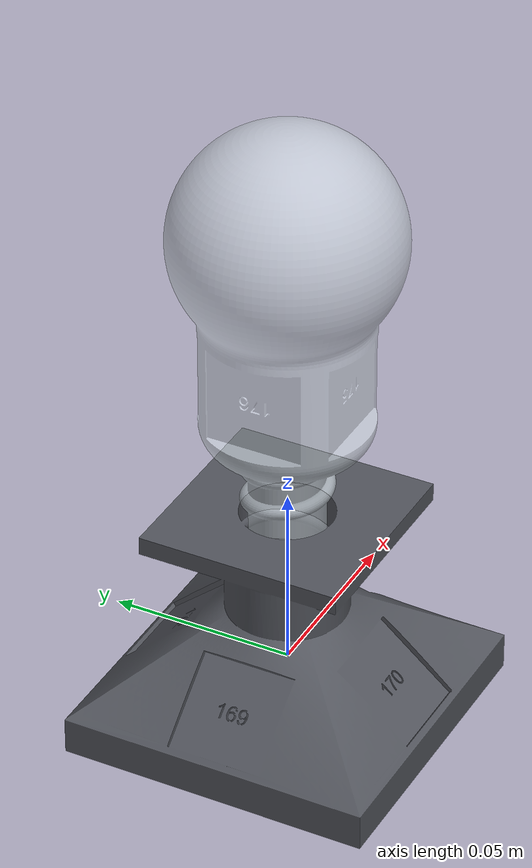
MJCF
<mujoco model="lamp_assembly">
  <asset>
    <!-- STLs are in mm. RoboCasa multiplies this scale by the ObjCat scale (1.0 here). -->
    <mesh file="visual/lamp_base.stl" name="lamp_base_vis" scale="0.001 0.001 0.001"/>
    <mesh file="visual/lamp_bulb.stl" name="lamp_bulb_vis" scale="0.001 0.001 0.001"/>
    <material name="base_mat" rgba="0.32 0.33 0.36 1" specular="0.6" shininess="0.55"/>
    <material name="bulb_mat" rgba="0.86 0.90 0.93 0.62" specular="0.9" shininess="0.9"/>
  </asset>

  <worldbody>
    <body>
      <!-- ===== lamp base: free joint gets added here by MJCFObject ===== -->
      <body name="object">
        <!-- explicit inertial: RoboCasa overwrites per-geom density, and we want the base
             heavy enough that screwing torque does not spin it on the counter -->
        <inertial pos="0 0 -0.005" mass="0.60" diaginertia="0.0006 0.0006 0.0008"/>

        <!-- mesh spans z -35..+28 mm about its own origin; shift so the foot sits at
             -0.0172 and the socket neck tip at +0.0458, matching the collision geoms -->
        <geom name="base_vis" type="mesh" mesh="lamp_base_vis" material="base_mat"
              pos="0 0 0.0178" group="1" contype="0" conaffinity="0"/>

        <geom name="base_foot_coll" type="box" size="0.0424 0.0424 0.005" pos="0 0 -0.0122" group="0" rgba="0.8 0.8 0.8 0"/>
        <geom name="base_pyramid_coll" type="box" size="0.036 0.036 0.006" pos="0 0 -0.0012" group="0" rgba="0.8 0.8 0.8 0"/>
        <geom name="base_cone_coll" type="cylinder" size="0.024 0.00525" pos="0 0 0.01005" group="0" rgba="0.8 0.8 0.8 0"/>
        <geom name="base_socket_coll" type="cylinder" size="0.018 0.012" pos="0 0 0.027" group="0" rgba="0.8 0.8 0.8 0"/>
        <geom name="base_rim_coll" type="box" size="0.0276 0.0276 0.0025" pos="0 0 0.0433" group="0" rgba="0.8 0.8 0.8 0"/>

        <!-- ===== light bulb: seated pose is z=0.0678, so it starts 0.02 m proud ===== -->
        <body name="bulb" pos="0 0 0.0878">
          <joint name="screw_hinge" type="hinge" axis="0 0 1" limited="true" range="-6.2831853 0"
                 damping="0.02" frictionloss="0.10" armature="0.005"/>
          <joint name="screw_slide" type="slide" axis="0 0 1" limited="true" range="-0.02 0"
                 damping="0.05" frictionloss="1.0" armature="0.0001"/>

          <inertial pos="0 0 0.02" mass="0.06" diaginertia="4e-5 4e-5 2e-5"/>

          <!-- mesh spans z -91..+30 mm; shift so the shell bottom lands at -0.053 and the
               glass tip at +0.068, matching the collision geoms below -->
          <geom name="bulb_vis" type="mesh" mesh="lamp_bulb_vis" material="bulb_mat"
                pos="0 0 0.038" group="1" contype="0" conaffinity="0"/>

          <!-- collision: threaded shell, collar, glass neck, glass envelope -->
          <geom name="bulb_shell_coll" type="cylinder" size="0.0122 0.01875" pos="0 0 -0.03425" group="0" rgba="0.8 0.8 0.8 0"/>
          <geom name="bulb_collar_coll" type="cylinder" size="0.0224 0.0027" pos="0 0 -0.0153" group="0" rgba="0.8 0.8 0.8 0"/>
          <geom name="bulb_neck_coll" type="cylinder" size="0.0200 0.0055" pos="0 0 0.0155" group="0" rgba="0.8 0.8 0.8 0"/>
          <geom name="bulb_glass_coll" type="sphere" size="0.0285" pos="0 0 0.0395" group="0" rgba="0.8 0.8 0.8 0"/>

          <!-- grasp reference for scripted policies / success checks -->
          <site name="bulb_center" pos="0 0 0.0395" size="0.004" rgba="1 0 0 0"/>
        </body>
      </body>

      <site rgba="0 0 0 0" size="0.005" pos="0 0 -0.0172" name="bottom_site"/>
      <site rgba="0 0 0 0" size="0.005" pos="0 0 0.1558" name="top_site"/>
      <site rgba="0 0 0 0" size="0.005" pos="0.0424 0.0424 0" name="horizontal_radius_site"/>
    </body>
  </worldbody>

  <equality>
    <joint joint1="screw_slide" joint2="screw_hinge" polycoef="0 0.0031831 0 0 0"
           solimp="0.9999 0.99999 0.0001" solref="0.004 1"/>

    <weld name="base_anchor" body1="main" active="false"
          solimp="0.9999 0.99999 0.001" solref="0.004 1"/>
  </equality>

  <contact>
    <exclude body1="main" body2="bulb"/>
  </contact>
</mujoco>
